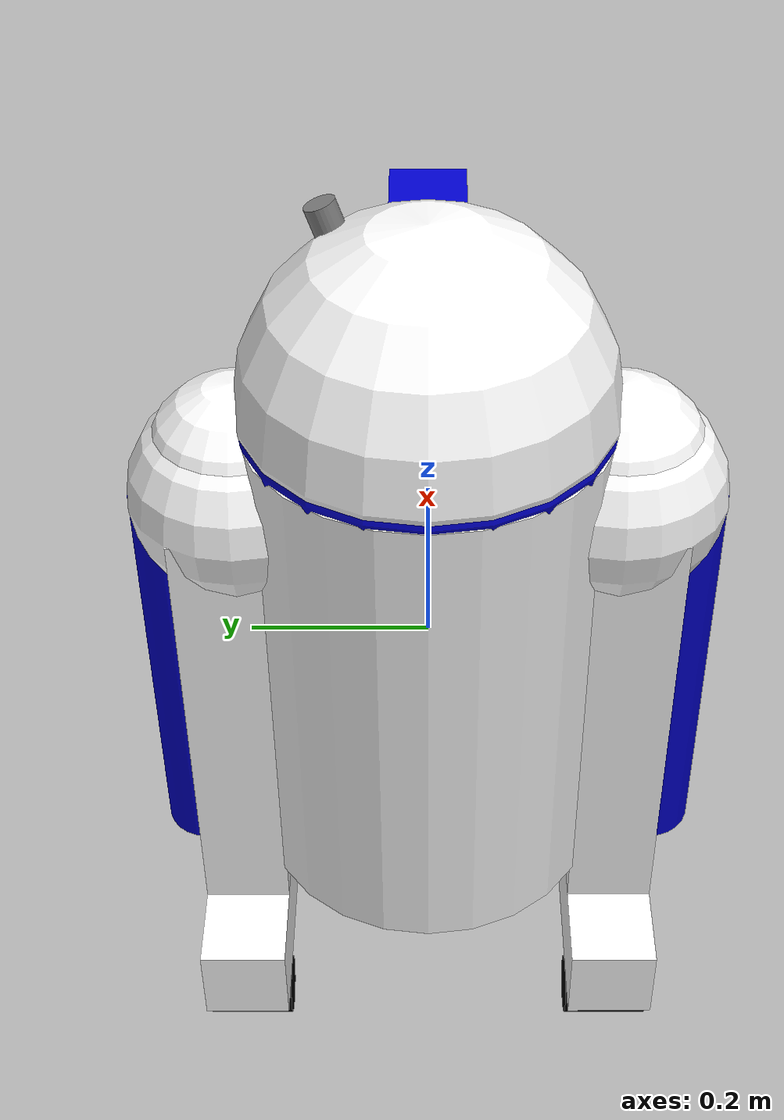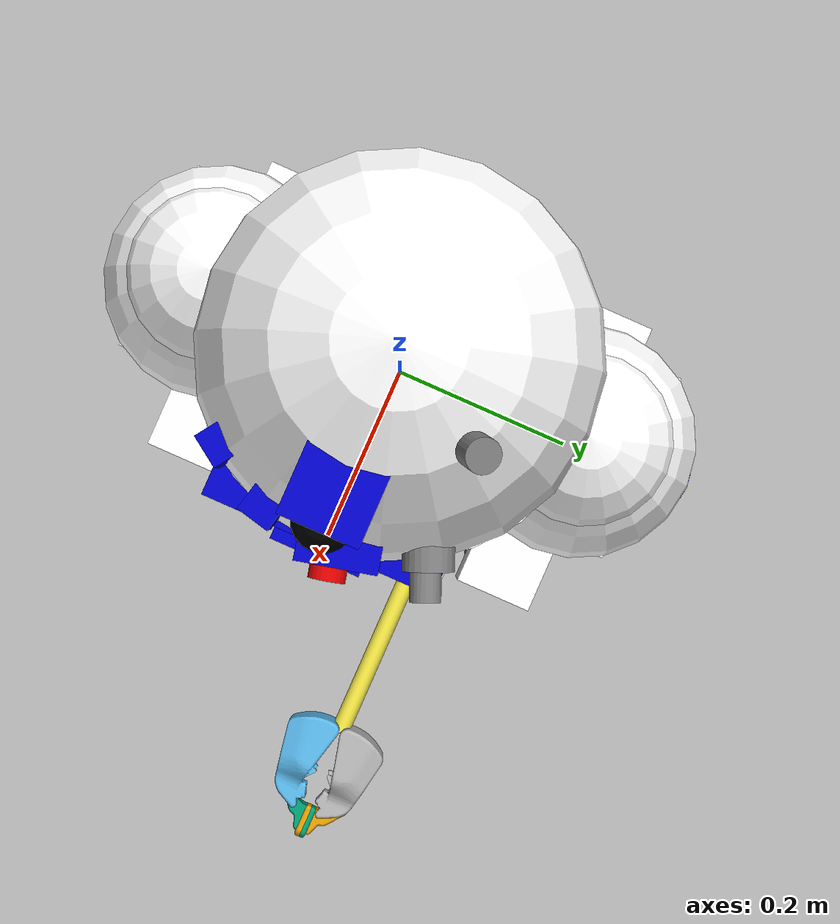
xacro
<?xml version="1.0"?>
<robot name="r2d2_xacro_mod" xmlns:xacro="http://ros.org/wiki/xacro">

<!-- _____________________ XACRO PROPERTIES ___________________________-->
<xacro:property name="width" value="0.2" />
<xacro:property name="leglen" value="0.6" />
<xacro:property name="polelen" value="0.2" />
<xacro:property name="bodylen" value="0.6" />
<xacro:property name="baselen" value="0.4" />
<xacro:property name="wheeldiam" value="0.07" />
<!-- PI is already defined in Python, which takes care of the calcs -->
<!--xacro:property name="pi" value="3.1416" /-->
<xacro:property name="shoulder" value="0.12"/>
<xacro:property name="box" value="0.05"/>
<xacro:property name="dec" value="0.02"/>
<xacro:property name="ori" value="0.1"/>
<xacro:macro name="default_inertial" params="mass">
    <inertial>
    <mass value="${mass}" />
    <inertia ixx="1.0" ixy="0.0" ixz="0.0" iyy="1.0" iyz="0.0" izz="1.0" />
    </inertial>
</xacro:macro>

<!-- _____________________ MATERIALS AND COLORS ______________________ -->
<material name="blue">
    <color rgba="0 0 0.8 1"/>
</material>

<material name="black">
    <color rgba="0 0 0 1"/>
</material>

<material name="white">
    <color rgba="1 1 1 1"/>
</material>

<material name="semi_white">
    <color rgba="0.8 0.8 0.8 1"/>
</material>

<material name="red">
    <color rgba="0.9 0.0 0.0 1.0"/>
</material>

<material name="gray">
    <color rgba="0.5 0.5 0.5 1.0"/>
</material>

<!-- ____________________ BASE LINK IMPLEMENTATION ____________________-->
<link name="base_link">
    <visual>
    <geometry>
        <cylinder radius="${width}" length="${bodylen}"/>
    </geometry>
    <material name="white"/>
    </visual>
    <collision>
    <geometry>
        <cylinder radius="${width}" length="${bodylen}"/>
    </geometry>
    </collision>
    <xacro:default_inertial mass="10"/>
</link>
<!-- _____________________ XACRO MACROS DESCRIPTIONS ________________-->
<!-- Xacro for wheel implementation-->
<xacro:macro name="wheel" params="prefix suffix reflect">
    <link name="${prefix}_${suffix}_wheel">
    <visual>
        <origin xyz="0 0 0" rpy="${pi/2} 0 0" />
        <geometry>
        <cylinder radius="${wheeldiam/2}" length="0.1"/>
        </geometry>
        <material name="black"/>
    </visual>
    <collision>
        <origin xyz="0 0 0" rpy="${pi/2} 0 0" />
        <geometry>
        <cylinder radius="${wheeldiam/2}" length="0.1"/>
        </geometry>
    </collision>
    <xacro:default_inertial mass="1"/>
    </link>
    <joint name="${prefix}_${suffix}_wheel_joint" type="continuous">
    <axis xyz="0 1 0" rpy="0 0 0" />
    <parent link="${prefix}_base"/>
    <child link="${prefix}_${suffix}_wheel"/>
    <origin xyz="${baselen*reflect/3} 0 -${wheeldiam/2+.05}" rpy="0 0 0"/>
    </joint>
</xacro:macro>

<!-- Xacro for leg implementation-->
<xacro:macro name="leg" params="prefix reflect">
    <link name="${prefix}_shoulder">
    <visual>
        <geometry>
        <sphere radius="${shoulder}"/>
        </geometry>
        <material name="white"/>
    </visual>
    <collision>
        <geometry>
        <sphere radius="${shoulder}"/>
        </geometry>
    </collision>
    <xacro:default_inertial mass="5"/>
    </link>
    <joint name="base_to_${prefix}_shoulder" type="revolute">
    <axis xyz="0 1 0"/>
    <limit effort="1000.0" lower="-0.3" upper="0.3" velocity="0.5"/>
    <parent link="base_link"/>
    <child link="${prefix}_shoulder"/>
    <origin xyz="0 ${reflect*0.20} 0.20"/>
    </joint>

    <link name="${prefix}_protection">
    <visual>
        <geometry>
        <sphere radius="${shoulder*0.82}"/>
        </geometry>
        <origin xyz="0 0 ${shoulder*0.3}"/>
        <material name="white"/>
    </visual>
    <collision>
        <geometry>
        <sphere radius="${shoulder*0.82}"/>
        </geometry>
    </collision>
    </link>
    <joint name="protection_to_${prefix}_shoulder" type="fixed">
    <parent link="${prefix}_shoulder"/>
    <child link="${prefix}_protection"/>
    </joint>

    <link name="${prefix}_leg">
    <visual>
        <geometry>
        <box size="${leglen} 0.1 0.2"/>
        </geometry>
        <origin xyz="0 0 -${leglen/2}" rpy="0 ${pi/2} 0"/>
        <material name="white"/>
    </visual>
    <collision>
        <geometry>
        <box size="${leglen} 0.1 0.2"/>
        </geometry>
        <origin xyz="0 0 -${leglen/2}" rpy="0 ${pi/2} 0"/>
    </collision>
    <xacro:default_inertial mass="10"/>
    </link>
    <joint name="shoulder_to_${prefix}_leg" type="fixed">
    <parent link="${prefix}_shoulder"/>
    <child link="${prefix}_leg"/>
    <origin xyz="0 ${reflect*0.02} 0" />
    </joint>

    <link name="${prefix}_piston">
    <visual>
    <geometry>
        <cylinder length="0.5" radius="0.05"/>
    </geometry>
    <origin xyz="0 ${reflect*0.05} -0.3"/>
    <material name="blue"/>
    </visual>
    <collision>
    <geometry>
        <cylinder length="0.5" radius="0.05"/>
    </geometry>
    <origin xyz="0 ${reflect*0.05} -0.3"/>
    </collision>
</link>
<joint name="piston_to_${prefix}_leg" type="fixed">
    <parent link="${prefix}_leg"/>
    <child link="${prefix}_piston"/>
    <origin xyz="0 0 0.05"/>
</joint>

    <link name="${prefix}_base">
    <visual>
        <geometry>
        <box size="${baselen} 0.1 0.1"/>
        </geometry>
        <material name="white"/>
    </visual>
    <collision>
        <geometry>
        <box size="${baselen} 0.1 0.1"/>
        </geometry>
    </collision>
    <xacro:default_inertial mass="10"/>
    </link>

    <joint name="${prefix}_base_joint" type="fixed">
    <parent link="${prefix}_leg"/>
    <child link="${prefix}_base"/>
    <origin xyz="0 0 ${-leglen}" />
    </joint>
    <xacro:wheel prefix="${prefix}" suffix="front" reflect="1"/>
    <xacro:wheel prefix="${prefix}" suffix="back" reflect="-1"/>
</xacro:macro>

<!-- Xacro for gripper implementation-->
<xacro:macro name="gripper" params="prefix reflect">
    <joint name="${prefix}_gripper_joint" type="revolute">
    <axis xyz="0 0 ${reflect}"/>
    <limit effort="1000.0" lower="0.0" upper="0.548" velocity="0.5"/>
    <origin rpy="0 0 0" xyz="${polelen} ${reflect*0.01} 0"/>
    <parent link="gripper_pole"/>
    <child link="${prefix}_gripper"/>
    </joint>
    <link name="${prefix}_gripper">
    <visual>
        <origin rpy="${(reflect-1)/2*pi} 0 0" xyz="0 0 0"/>
        <geometry>
        <mesh filename="package://m03_using_urdf/meshes/l_finger.dae"/>
        </geometry>
    </visual>
    <collision>
        <geometry>
        <mesh filename="package://m03_using_urdf/meshes/l_finger.dae"/>
        </geometry>
        <origin rpy="${(reflect-1)/2*pi} 0 0" xyz="0 0 0"/>
    </collision>
    <xacro:default_inertial mass="0.05"/>
    </link>

    <joint name="${prefix}_tip_joint" type="fixed">
    <parent link="${prefix}_gripper"/>
    <child link="${prefix}_tip"/>
    </joint>
    <link name="${prefix}_tip">
    <visual>
        <origin rpy="${(reflect-1)/2*pi} 0 0" xyz="0.09137 0.00495 0"/>
        <geometry>
        <mesh filename="package://m03_using_urdf/meshes/l_finger_tip.dae"/>
        </geometry>
    </visual>
    <collision>
        <geometry>
        <mesh filename="package://m03_using_urdf/meshes/l_finger_tip.dae"/>
        </geometry>
        <origin rpy="${(reflect-1)/2*pi} 0 0" xyz="0.09137 0.00495 0"/>
    </collision>
    <xacro:default_inertial mass="0.05"/>
    </link>
</xacro:macro>
<!-- Xacro for doors and rectangles-->
<xacro:macro name="rectangles" params="size_x size_y size_z x y z name material">
    <link name="${name}">
    <visual>
        <geometry>
        <box size="${size_x} ${size_y} ${size_z}"/>
        </geometry>
        <material name="${material}"/>
    </visual>
    </link>
    <joint name="base_to_${name}" type="fixed">
    <parent link="base_link"/>
    <child link="${name}"/>
    <origin xyz="${x} ${y} ${z}"/>
    </joint>
</xacro:macro>

<!-- Xacro for head/neck implementation-->
<xacro:macro name="head_sphere" params="material name type father z">
    <link name="${name}">
    <visual>
        <geometry>
        <sphere radius="${width}"/>
        </geometry>
        <material name="${material}"/>
    </visual>
    <collision>
        <geometry>
        <sphere radius="${width}"/>
        </geometry>
    </collision>
    <xacro:default_inertial mass="2"/>
    </link>
    <joint name="${name}_swivel" type="${type}">
    <parent link="${father}"/>
    <child link="${name}"/>
    <axis xyz="0 0 1"/>
    <origin xyz="0 0 ${z}"/>
    </joint>
</xacro:macro>

<xacro:macro name="head_rec_decoration" params="name material height width x y z orientation">
    <link name="${name}">
    <visual>
    <origin rpy="0 0 ${orientation}"/>
    <geometry>
        <box size="${height} ${width} ${height}"/>
    </geometry>
    <material name="${material}"/>
    </visual>
    <collision>
    <origin rpy="0 0 ${orientation}"/>
    <geometry>
        <box size="${height} ${width} ${height}"/>
    </geometry>
    </collision>
</link>
<joint name="to_${name}" type="fixed">
    <parent link="head"/>
    <child link="${name}"/>
    <origin xyz="${x} ${y} ${z}"/>
</joint>
</xacro:macro>

<xacro:macro name="head_cyl_decoration" params="name material height rad x y z raw pitch yaw parent">
    <link name="${name}">
    <visual>
        <origin rpy="${raw} ${pitch} ${yaw}"/>
        <geometry>
        <cylinder radius="${rad}" length="${height}"/>
        </geometry>
        <material name="${material}"/>
    </visual>
    <collision>
        <origin rpy="0 ${pitch} ${yaw}"/>
        <geometry>
        <cylinder radius="${rad}" length="${height}"/>
        </geometry>
    </collision>
    </link>
    <joint name="to_${name}" type="fixed">
    <parent link="${parent}"/>
    <child link="${name}"/>
    <origin xyz="${x} ${y} ${z}"/>
    </joint>
</xacro:macro>

<xacro:macro name="sphere_button" params="name material rad x y z parent">
    <link name="${name}">
    <visual>
    <geometry>
        <sphere radius="${rad}"/>
    </geometry>
    <material name="${material}"/>
    </visual>
    <collision>
    <geometry>
        <sphere radius="${rad}"/>
    </geometry>
    </collision>
</link>
<joint name="${name}_${parent}" type="fixed">
    <parent link="${parent}"/>
    <child link="${name}"/>
    <origin xyz="${x} ${y} ${z}"/>
</joint>
</xacro:macro>
<!-- ______________________ XACRO CALLS AND USAGE______________________-->
<!-- Calling macro for leg-->
<xacro:leg prefix="right" reflect="-1" />
<xacro:leg prefix="left" reflect="1" />

<!-- Calling macro for gripper-->
<xacro:gripper prefix="left" reflect="1" />
<xacro:gripper prefix="right" reflect="-1" />

<!--Calling macro for vent-->
<xacro:rectangles size_x="${width/2}" size_y="${width/2}" size_z="${box*5}" x="${box*3+0.02}" y="0.0" z="${box}" name="vent_plat" material="blue"/>

<!--Calling macro for doors-->
<xacro:rectangles size_x="${width/2}" size_y="${width/4}" size_z="${width*1.25}" x="${box*2.9}" y="${box*2.1}" z="${box}" name="left_door" material="semi_white"/>
<xacro:rectangles size_x="${width/2}" size_y="${width/4}" size_z="${width*1.25}" x="${box*2.9}" y="${box*-2.1}" z="${box}" name="right_door" material="semi_white"/>
<xacro:rectangles size_x="${width/2}" size_y="${width*1.25}" size_z="${width*0.175}" x="${box*3.05}" y="0.0" z="${box*5}" name="blue1_door" material="blue"/>
<xacro:rectangles size_x="${width/2}" size_y="${width*1.25}" size_z="${width*0.175}" x="${box*3.05}" y="0.0" z="${box*4}" name="blue2_door" material="blue"/>

<!-- Calling macro for head-->
<xacro:head_sphere material="white" name="head" father="base_link" type="continuous" z="${bodylen/1.9}"/>
<xacro:head_sphere material="blue" name="neck" father="head" type="fixed" z="${-bodylen*0.02}"/>
<xacro:head_rec_decoration material="blue" name="dec_1" height="${dec*3}" width="${dec*1.75}" x="${width*0.85}" y="${-width*0.275}" z="${width*0.225}" orientation="${-ori*2.3}"/>
<xacro:head_rec_decoration material="blue" name="dec_2" height="${dec*3}" width="${dec*1.75}" x="${width*0.675}" y="${-width*0.5525}" z="${width*0.225}" orientation="${-ori*6}"/>
<xacro:head_rec_decoration material="blue" name="base_light" height="${dec*3}" width="${dec*4}" x="${width*0.9}" y="${width*0.1}" z="${width*0.225}" orientation="${ori*2.3}"/>
<xacro:head_rec_decoration material="blue" name="eye" height="${dec*4}" width="${dec*4}" x="${width*0.707}" y="0.0" z="${width*0.607}" orientation="0.0"/>
<xacro:head_cyl_decoration material="gray" name="base_camera" height="${dec*2}" rad="${dec*1.25}" x="${width*0.8}" y="${width*0.5}" z="${width*0.23}" raw="0" pitch="${ori*15.7075}" yaw="${ori*4}" parent="head"/>
<xacro:head_cyl_decoration material="gray" name="camera" height="${dec*1.75}" rad="${dec*0.75}" x="${width*0.15}" y="${width*0.05}" z="0.0" raw="0" pitch="${ori*15.7075}" yaw="${ori*4}" parent="base_camera"/>
<xacro:head_cyl_decoration material="red" name="red_light" height="${dec*1.5}" rad="${dec*0.9}" x="${width*0.15}" y="0.0" z="${width*0.005}" raw="0" pitch="${ori*15.7075}" yaw="${ori*2.3}" parent="base_light"/>
<xacro:head_cyl_decoration material="gray" name="antena" height="${dec*2}" rad="${dec*0.85}" x="${width*0.3}" y="${width*0.5}" z="${width*0.85}" raw="${ori*-3}" pitch="${ori*2}" yaw="${ori*3}" parent="head"/>
<xacro:sphere_button material="black" name="pupil" rad="${dec*1.5}" x="${width*0.15}" y="0.0" z="${width*0.005}" parent="eye"/>
<!-- _______________________ OTHER DEFINITIONS ________________________-->
<joint name="gripper_extension" type="prismatic">
    <parent link="base_link"/>
    <child link="gripper_pole"/>
    <limit effort="1000.0" lower="-${width*2-.02}" upper="0" velocity="0.5"/>
    <origin rpy="0 0 0" xyz="${width-.01} 0.1 0.05"/>
</joint>

<link name="gripper_pole">
    <visual>
    <geometry>
        <cylinder length="${polelen}" radius="0.01"/>
    </geometry>
    <origin xyz="${polelen/2} 0 0" rpy="0 ${pi/2} 0 "/>
    </visual>
    <collision>
    <geometry>
        <cylinder length="${polelen}" radius="0.01"/>
    </geometry>
    <origin xyz="${polelen/2} 0 0" rpy="0 ${pi/2} 0 "/>
    </collision>
    <xacro:default_inertial mass="0.05"/>
</link>

</robot>
